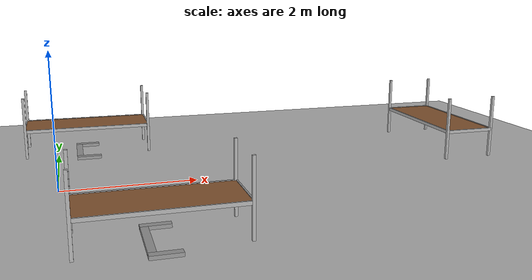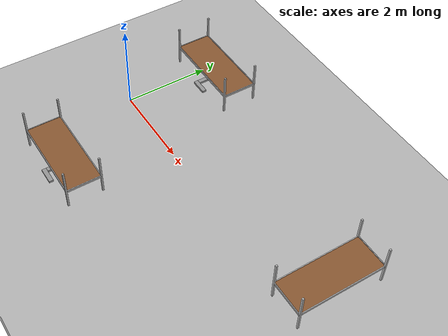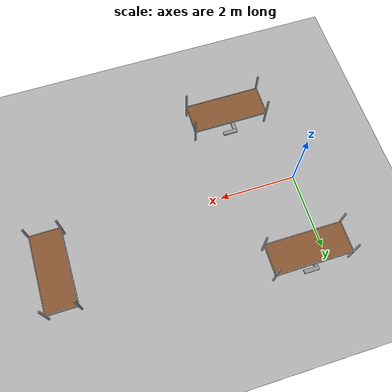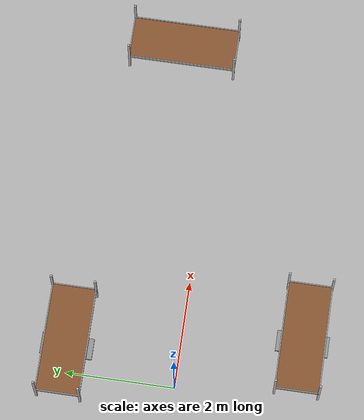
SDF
<sdf version="1.6">
 <world name="default">
  <light name="light0" type="directional">
   <pose>0 -18.818 8 0.75 -0 0</pose>
   <diffuse>0.5 0.5 0.5 1</diffuse>
   <specular>0.1 0.1 0.1 1</specular>
   <direction>0.1 0.1 -0.9</direction>
   <attenuation>
    <range>20</range>
    <constant>0.5</constant>
    <linear>0.01</linear>
    <quadratic>0.001</quadratic>
   </attenuation>
   <cast_shadows>0</cast_shadows>
  </light>
  <light name="light3" type="directional">
   <pose>3.9239 1.64974 4 0 1.2 0</pose>
   <diffuse>0.5 0.5 0.5 1</diffuse>
   <specular>0.1 0.1 0.1 1</specular>
   <direction>0.1 0.1 -0.9</direction>
   <attenuation>
    <range>20</range>
    <constant>0.5</constant>
    <linear>0.01</linear>
    <quadratic>0.001</quadratic>
   </attenuation>
   <cast_shadows>0</cast_shadows>
  </light>
  <light name="light5" type="directional">
   <pose>0.454419 12.4783 5 -0.8 0 0</pose>
   <diffuse>0.5 0.5 0.5 1</diffuse>
   <specular>0.1 0.1 0.1 1</specular>
   <direction>0.1 0.1 -0.9</direction>
   <attenuation>
    <range>20</range>
    <constant>0.5</constant>
    <linear>0.01</linear>
    <quadratic>0.001</quadratic>
   </attenuation>
   <cast_shadows>0</cast_shadows>
  </light>
  <scene>
   <shadows>false</shadows>
   <ambient>0.5 0.5 0.5 1.0</ambient>
   <grid>false</grid>
   <sky><time>22</time><sunrise>20</sunrise><sunset>21</sunset><clouds><humidity>0</humidity></clouds></sky>
  </scene>
  <include><uri>model://ground_plane</uri></include>
  <include><uri>model://moon_surface</uri><pose>0 0 -0.25 0 0 0</pose></include>
  <include><uri>model://rack</uri><name>rack1</name><pose>6.5  0.75 0.0750  0.0 0.0 1.57</pose></include>
  <include><uri>model://rack</uri><name>rack2</name><pose>1.15 -2.2 0.075 0.0 0.0 0.0</pose></include>
  <include>
   <uri>model://single_rack_base</uri>
   <name>rack2Base</name>
   <pose>1.0 -2.2 0.041430 0.0 0.0 1.57</pose>
  </include>
  <include><uri>model://rack</uri><name>rack3</name><pose>0.5 2.05 0.075 0.0 0.0 0.0</pose></include>
  <include>
   <uri>model://single_rack_base</uri>
   <name>rack3Base</name>
   <pose>0.35 2.05 0.041430 0.0 0.0 1.57</pose>
  </include>
  <include><uri>model://isro_arm</uri><name>boxes</name><pose>2.75 0.250 0.0 0.0 0.0 0.0</pose></include>
  <plugin name="gazebo_link_attacher" filename="libgazebo_link_attacher.so"/>
  <plugin name="gazebo_link_ur5_attacher" filename="libgazebo_link_ur5_attacher.so"/>
 </world>
</sdf>

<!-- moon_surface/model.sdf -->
<sdf version="1.6">
  <model name="moon_surface">
    <static>true</static>

    <link name="link">
      <pose>0 0 0.003 0 0 0</pose>

      <visual name="visual1">
        <cast_shadows>false</cast_shadows>
        <geometry>
          <mesh><uri>model://moon_surface/meshes/moon_surface.dae</uri></mesh>
        </geometry>
        <material>
          <shader type='pixel'/>
        </material>
        <pose>0 0 0 0 0 0</pose>
        <transparency>0</transparency>
      </visual>
    </link>
  </model>
</sdf>

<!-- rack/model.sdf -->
<sdf version='1.6'>
  <model name='rack'>
    <link name="surface">
      <inertial>
          <mass>0.1</mass>
          <inertia>
              <ixx>0.00001</ixx>
              <ixy>0.000</ixy>
              <ixz>0.000</ixz>
              <iyy>0.00001</iyy>
              <iyz>0.000</iyz>
              <izz>0.00001</izz>
          </inertia>
      </inertial>
      <visual name='surface_visual'>
        <pose relative_to=''>0 0 0.45 0 0 0</pose>
        <geometry>
          <box>
            <size>2 0.8 0.03</size>
          </box>
        </geometry>
        <material>
          <ambient>0.55 0.35 0.2 1</ambient>
          <diffuse>0.55 0.35 0.2 1</diffuse>
          <specular>0.1 0.1 0.1 1</specular>
          <emissive>0 0 0 1</emissive>
        </material>
        <transparency>0</transparency>
        <cast_shadows>1</cast_shadows>
      </visual>
      <collision name='surface_collision'>
        <pose relative_to=''>0 0 0.45 0 0 0</pose>
        <laser_retro>0</laser_retro>
        <max_contacts>10</max_contacts>
        <geometry>
          <box>
            <size>2 0.82 0.03</size>
          </box>
        </geometry>
        <surface>
          <friction>
            <ode>
              <mu>1000000</mu>
              <mu2>1000000</mu2>
            </ode>
          </friction>
          <bounce>
            <restitution_coefficient>0</restitution_coefficient>
          </bounce>
          <contact>
            <ode>
              <kp>1e13</kp>
              <kd>1</kd>
            </ode>
          </contact>
        </surface>
      </collision>

      <visual name='left_holding_visual'>
        <pose relative_to=''>0 0.4 0.45 0 0 0</pose>
        <geometry>
          <box>
            <size>1.98 0.02 0.05</size>
          </box>
        </geometry>
        <material>
          <ambient>0.3 0.3 0.3 1</ambient>
          <diffuse>0.7 0.7 0.7 1</diffuse>
          <specular>0.01 0.01 0.01 1</specular>
          <emissive>0 0 0 1</emissive>
          <pbr>
            <metal>
              <roughness>0.8</roughness>
              <metalness>0.1</metalness>
            </metal>
          </pbr>
        </material>
        <transparency>0</transparency>
        <cast_shadows>1</cast_shadows>
      </visual>

      <visual name='right_holding_visual'>
        <pose relative_to=''>0 -0.4 0.45 0 0 0</pose>
        <geometry>
          <box>
            <size>1.98 0.02 0.05</size>
          </box>
        </geometry>
        <material>
          <ambient>0.3 0.3 0.3 1</ambient>
          <diffuse>0.7 0.7 0.7 1</diffuse>
          <specular>0.01 0.01 0.01 1</specular>
          <emissive>0 0 0 1</emissive>
          <pbr>
            <metal>
              <roughness>0.8</roughness>
              <metalness>0.1</metalness>
            </metal>
          </pbr>
        </material>
        <transparency>0</transparency>
        <cast_shadows>1</cast_shadows>
      </visual>

      <visual name='front_holding_visual'>
        <pose relative_to=''>1.0 0 0.45 0 0 1.57</pose>
        <geometry>
          <box>
            <size>0.8 0.02 0.05</size>
          </box>
        </geometry>
        <material>
          <ambient>0.3 0.3 0.3 1</ambient>
          <diffuse>0.7 0.7 0.7 1</diffuse>
          <specular>0.01 0.01 0.01 1</specular>
          <emissive>0 0 0 1</emissive>
          <pbr>
            <metal>
              <roughness>0.8</roughness>
              <metalness>0.1</metalness>
            </metal>
          </pbr>
        </material>
        <transparency>0</transparency>
        <cast_shadows>1</cast_shadows>
      </visual>

      <visual name='back_holding_visual'>
        <pose relative_to=''>-1.0 0 0.45 0 0 1.57</pose>
        <geometry>
          <box>
            <size>0.8 0.02 0.05</size>
          </box>
        </geometry>
        <material>
          <ambient>0.3 0.3 0.3 1</ambient>
          <diffuse>0.7 0.7 0.7 1</diffuse>
          <specular>0.01 0.01 0.01 1</specular>
          <emissive>0 0 0 1</emissive>
          <pbr>
            <metal>
              <roughness>0.8</roughness>
              <metalness>0.1</metalness>
            </metal>
          </pbr>
        </material>
        <transparency>0</transparency>
        <cast_shadows>1</cast_shadows>
      </visual>

      <visual name='front_left_leg_visual'>
        <pose relative_to=''>0.99 0.4 0.5 0 0 0</pose>
        <geometry>
          <box>
            <size>0.04 0.04 1.0</size>
          </box>
        </geometry>
        <material>
          <ambient>0.3 0.3 0.3 1</ambient>
          <diffuse>0.7 0.7 0.7 1</diffuse>
          <specular>0.01 0.01 0.01 1</specular>
          <emissive>0 0 0 1</emissive>
          <pbr>
            <metal>
              <roughness>0.8</roughness>
              <metalness>0.1</metalness>
            </metal>
          </pbr>
        </material>
        <cast_shadows>1</cast_shadows>
      </visual>
      <collision name='front_left_leg_collision'>
        <pose relative_to=''>0.99 0.4 0.5 0 0 0</pose>
        <laser_retro>0</laser_retro>
        <max_contacts>10</max_contacts>
        <geometry>
          <box>
            <size>0.04 0.04 1.0</size>
          </box>
        </geometry>
        <surface>
          <friction>
            <ode>
              <mu>0.1</mu>
              <mu2>0.1</mu2>
            </ode>
          </friction>
          <bounce>
            <restitution_coefficient>0</restitution_coefficient>
          </bounce>
          <contact>
            <ode>
              <kp>1e6</kp>
              <kd>1</kd>
            </ode>
          </contact>
        </surface>
      </collision>

      <visual name='front_right_leg_visual'>
        <pose relative_to=''>0.99 -0.4 0.5 0 0 0</pose>
        <geometry>
          <box>
            <size>0.04 0.04 1.0</size>
          </box>
        </geometry>
        <material>
          <ambient>0.3 0.3 0.3 1</ambient>
          <diffuse>0.7 0.7 0.7 1</diffuse>
          <specular>0.01 0.01 0.01 1</specular>
          <emissive>0 0 0 1</emissive>
          <pbr>
            <metal>
              <roughness>0.8</roughness>
              <metalness>0.1</metalness>
            </metal>
          </pbr>
        </material>
        <cast_shadows>1</cast_shadows>
      </visual>
      <collision name='front_right_leg_collision'>
        <pose relative_to=''>0.99 -0.4 0.5 0 0 0</pose>
        <laser_retro>0</laser_retro>
        <max_contacts>10</max_contacts>
        <geometry>
          <box>
            <size>0.04 0.04 1.0</size>
          </box>
        </geometry>
        <surface>
          <friction>
            <ode>
              <mu>0.1</mu>
              <mu2>0.1</mu2>
            </ode>
          </friction>
          <bounce>
            <restitution_coefficient>0</restitution_coefficient>
          </bounce>
          <contact>
            <ode>
              <kp>1e6</kp>
              <kd>1</kd>
            </ode>
          </contact>
        </surface>
      </collision>

      <visual name='back_left_leg_visual'>
        <pose relative_to=''>-0.99 0.4 0.5 0 0 0</pose>
        <geometry>
          <box>
            <size>0.04 0.04 1.0</size>
          </box>
        </geometry>
        <material>
          <ambient>0.3 0.3 0.3 1</ambient>
          <diffuse>0.7 0.7 0.7 1</diffuse>
          <specular>0.01 0.01 0.01 1</specular>
          <emissive>0 0 0 1</emissive>
          <pbr>
            <metal>
              <roughness>0.8</roughness>
              <metalness>0.1</metalness>
            </metal>
          </pbr>
        </material>
        <cast_shadows>1</cast_shadows>
      </visual>
      <collision name='back_left_leg_collision'>
        <pose relative_to=''>-0.99 0.4 0.5 0 0 0</pose>
        <laser_retro>0</laser_retro>
        <max_contacts>10</max_contacts>
        <geometry>
          <box>
            <size>0.04 0.04 1.0</size>
          </box>
        </geometry>
        <surface>
          <friction>
            <ode>
              <mu>0.1</mu>
              <mu2>0.1</mu2>
            </ode>
          </friction>
          <bounce>
            <restitution_coefficient>0</restitution_coefficient>
          </bounce>
          <contact>
            <ode>
              <kp>1e6</kp>
              <kd>1</kd>
            </ode>
          </contact>
        </surface>
      </collision>

      <visual name='back_right_leg_visual'>
        <pose relative_to=''>-0.99 -0.4 0.5 0 0 0</pose>
        <geometry>
          <box>
            <size>0.04 0.04 1.0</size>
          </box>
        </geometry>
        <material>
          <ambient>0.3 0.3 0.3 1</ambient>
          <diffuse>0.7 0.7 0.7 1</diffuse>
          <specular>0.01 0.01 0.01 1</specular>
          <emissive>0 0 0 1</emissive>
          <pbr>
            <metal>
              <roughness>0.8</roughness>
              <metalness>0.1</metalness>
            </metal>
          </pbr>
        </material>
        <cast_shadows>1</cast_shadows>
      </visual>
      <collision name='back_right_leg_collision'>
        <pose relative_to=''>-0.99 -0.4 0.5 0 0 0</pose>
        <laser_retro>0</laser_retro>
        <max_contacts>10</max_contacts>
        <geometry>
          <box>
            <size>0.04 0.04 1.0</size>
          </box>
        </geometry>
        <surface>
          <friction>
            <ode>
              <mu>0.1</mu>
              <mu2>0.1</mu2>
            </ode>
          </friction>
          <bounce>
            <restitution_coefficient>0</restitution_coefficient>
          </bounce>
          <contact>
            <ode>
              <kp>1e6</kp>
              <kd>1</kd>
            </ode>
          </contact>
        </surface>
      </collision>
    </link>

  </model>
</sdf>

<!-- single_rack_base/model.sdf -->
<sdf version='1.7'>
  <model name="my_model">
    <pose>0 0 0.0 0 0 0</pose>
    <static>true</static>
    <link name='link'>
      <inertial>
        <pose>0 0 0 0 -0 0</pose>
        <mass>1.87</mass>
        <inertia>
          <ixx>0.01857</ixx>
          <ixy>0</ixy>
          <ixz>0</ixz>
          <iyy>0.015598</iyy>
          <iyz>0</iyz>
          <izz>0.00305</izz>
        </inertia>
      </inertial>
      <self_collide>0</self_collide>
      <enable_wind>0</enable_wind>
      <kinematic>0</kinematic>
      <pose>0 -0.154224 0 0 -0 0</pose>
      <gravity>1</gravity>
      <visual name='visual_3'>
        <cast_shadows>0</cast_shadows>
        <geometry>
          <box>
            <size>0.1 0.39 0.05</size>
          </box>
        </geometry>
        <material>
          <lighting>1</lighting>
          <script>
            <uri>file://media/materials/scripts/gazebo.material</uri>
            <name>Gazebo/Grey</name>
          </script>
          <shader type='pixel'>
            <normal_map>__default__</normal_map>
          </shader>
          <ambient>0.3 0.3 0.3 1</ambient>
          <diffuse>0.7 0.7 0.7 1</diffuse>
          <specular>0.01 0.01 0.01 1</specular>
          <emissive>0 0 0 1</emissive>
        </material>
        <pose>0.43 0.01 0 0 -0 0</pose>
        <transparency>0</transparency>
      </visual>
      <visual name='visual_4'>
        <cast_shadows>0</cast_shadows>
        <geometry>
          <box>
            <size>0.1 0.39 0.05</size>
          </box>
        </geometry>
        <material>
          <lighting>1</lighting>
          <script>
            <uri>file://media/materials/scripts/gazebo.material</uri>
            <name>Gazebo/Grey</name>
          </script>
          <shader type='pixel'>
            <normal_map>__default__</normal_map>
          </shader>
          <ambient>0.3 0.3 0.3 1</ambient>
          <diffuse>0.7 0.7 0.7 1</diffuse>
          <specular>0.01 0.01 0.01 1</specular>
          <emissive>0 0 0 1</emissive>
        </material>
        <pose>-0.43 0.01 0 0 -0 0</pose>
        <transparency>0</transparency>
      </visual>
      <visual name='visual_1'>
        <cast_shadows>0</cast_shadows>
        <geometry>
          <box>
            <size>0.76 0.1 0.05</size>
          </box>
        </geometry>
        <material>
          <lighting>1</lighting>
          <script>
            <uri>file://media/materials/scripts/gazebo.material</uri>
            <name>Gazebo/Grey</name>
          </script>
          <shader type='pixel'>
            <normal_map>__default__</normal_map>
          </shader>
          <ambient>0.3 0.3 0.3 1</ambient>
          <diffuse>0.7 0.7 0.7 1</diffuse>
          <specular>0.01 0.01 0.01 1</specular>
          <emissive>0 0 0 1</emissive>
        </material>
        <pose>0 0.155 0 0 -0 0</pose>
        <transparency>0</transparency>
      </visual>
      <collision name='collision_7'>
        <laser_retro>0</laser_retro>
        <max_contacts>10</max_contacts>
        <pose>0.43 0.01 0 0 -0 0</pose>
        <geometry>
          <box>
            <size>0.1 0.39 0.05</size>
          </box>
        </geometry>
        <surface>
          <friction>
            <ode>
              <mu>1</mu>
              <mu2>1</mu2>
              <fdir1>0 0 0</fdir1>
              <slip1>0</slip1>
              <slip2>0</slip2>
            </ode>
            <torsional>
              <coefficient>1</coefficient>
              <patch_radius>0</patch_radius>
              <surface_radius>0</surface_radius>
              <use_patch_radius>1</use_patch_radius>
              <ode>
                <slip>0</slip>
              </ode>
            </torsional>
          </friction>
          <bounce>
            <restitution_coefficient>0</restitution_coefficient>
            <threshold>1e+06</threshold>
          </bounce>
          <contact>
            <collide_without_contact>0</collide_without_contact>
            <collide_without_contact_bitmask>1</collide_without_contact_bitmask>
            <collide_bitmask>1</collide_bitmask>
            <ode>
              <soft_cfm>0</soft_cfm>
              <soft_erp>0.2</soft_erp>
              <kp>1e+13</kp>
              <kd>1</kd>
              <max_vel>0.01</max_vel>
              <min_depth>0</min_depth>
            </ode>
            <bullet>
              <split_impulse>1</split_impulse>
              <split_impulse_penetration_threshold>-0.01</split_impulse_penetration_threshold>
              <soft_cfm>0</soft_cfm>
              <soft_erp>0.2</soft_erp>
              <kp>1e+13</kp>
              <kd>1</kd>
            </bullet>
          </contact>
        </surface>
      </collision>
      <collision name='collision_8'>
        <laser_retro>0</laser_retro>
        <max_contacts>10</max_contacts>
        <pose>-0.43 0.01 0 0 -0 0</pose>
        <geometry>
          <box>
            <size>0.1 0.39 0.05</size>
          </box>
        </geometry>
        <surface>
          <friction>
            <ode>
              <mu>1</mu>
              <mu2>1</mu2>
              <fdir1>0 0 0</fdir1>
              <slip1>0</slip1>
              <slip2>0</slip2>
            </ode>
            <torsional>
              <coefficient>1</coefficient>
              <patch_radius>0</patch_radius>
              <surface_radius>0</surface_radius>
              <use_patch_radius>1</use_patch_radius>
              <ode>
                <slip>0</slip>
              </ode>
            </torsional>
          </friction>
          <bounce>
            <restitution_coefficient>0</restitution_coefficient>
            <threshold>1e+06</threshold>
          </bounce>
          <contact>
            <collide_without_contact>0</collide_without_contact>
            <collide_without_contact_bitmask>1</collide_without_contact_bitmask>
            <collide_bitmask>1</collide_bitmask>
            <ode>
              <soft_cfm>0</soft_cfm>
              <soft_erp>0.2</soft_erp>
              <kp>1e+13</kp>
              <kd>1</kd>
              <max_vel>0.01</max_vel>
              <min_depth>0</min_depth>
            </ode>
            <bullet>
              <split_impulse>1</split_impulse>
              <split_impulse_penetration_threshold>-0.01</split_impulse_penetration_threshold>
              <soft_cfm>0</soft_cfm>
              <soft_erp>0.2</soft_erp>
              <kp>1e+13</kp>
              <kd>1</kd>
            </bullet>
          </contact>
        </surface>
      </collision>
      <collision name='collision_6'>
        <laser_retro>0</laser_retro>
        <max_contacts>10</max_contacts>
        <pose>0 0.155 0 0 -0 0</pose>
        <geometry>
          <box>
            <size>0.76 0.1 0.05</size>
          </box>
        </geometry>
        <surface>
          <friction>
            <ode>
              <mu>1</mu>
              <mu2>1</mu2>
              <fdir1>0 0 0</fdir1>
              <slip1>0</slip1>
              <slip2>0</slip2>
            </ode>
            <torsional>
              <coefficient>1</coefficient>
              <patch_radius>0</patch_radius>
              <surface_radius>0</surface_radius>
              <use_patch_radius>1</use_patch_radius>
              <ode>
                <slip>0</slip>
              </ode>
            </torsional>
          </friction>
          <bounce>
            <restitution_coefficient>0</restitution_coefficient>
            <threshold>1e+06</threshold>
          </bounce>
          <contact>
            <collide_without_contact>0</collide_without_contact>
            <collide_without_contact_bitmask>1</collide_without_contact_bitmask>
            <collide_bitmask>1</collide_bitmask>
            <ode>
              <soft_cfm>0</soft_cfm>
              <soft_erp>0.2</soft_erp>
              <kp>1e+13</kp>
              <kd>1</kd>
              <max_vel>0.01</max_vel>
              <min_depth>0</min_depth>
            </ode>
            <bullet>
              <split_impulse>1</split_impulse>
              <split_impulse_penetration_threshold>-0.01</split_impulse_penetration_threshold>
              <soft_cfm>0</soft_cfm>
              <soft_erp>0.2</soft_erp>
              <kp>1e+13</kp>
              <kd>1</kd>
            </bullet>
          </contact>
        </surface>
      </collision>
    </link>
  </model>
</sdf>

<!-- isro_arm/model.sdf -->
<sdf version='1.7'>
  <model name="joel_gauresh_urdf">
  <robot name="joel_gauresh_urdf">
  <link
    name="base_link">
    <inertial>
      <origin
        xyz="-0.00030267 -0.00045453 0.030233"
        rpy="0 0 0" />
      <mass
        value="0.55521" />
      <inertia
        ixx="0.0009981"
        ixy="1.3692E-05"
        ixz="2.7862E-07"
        iyy="0.0010057"
        iyz="6.0539E-07"
        izz="0.001945" />
    </inertial>
    <visual>
      <origin
        xyz="0 0 0"
        rpy="0 0 0" />
      <geometry>
        <mesh
          filename="model://isro_arm/meshes/base_link.STL" />
      </geometry>
      <material
        name="">
        <color
          rgba="0.50196 0.50196 0.50196 1" />
      </material>
    </visual>
    <collision>
      <origin
        xyz="0 0 0"
        rpy="0 0 0" />
      <geometry>
        <mesh
          filename="model://isro_arm/meshes/base_link.STL" />
      </geometry>
    </collision>
  </link>
  <link
    name="shoulder_link1">
    <inertial>
      <origin
        xyz="-0.00093144 0.02883 0.00062509"
        rpy="0 0 0" />
      <mass
        value="0.36846" />
      <inertia
        ixx="0.00058065"
        ixy="9.1504E-08"
        ixz="-1.601E-05"
        iyy="0.0010185"
        iyz="1.6871E-07"
        izz="0.00055982" />
    </inertial>
    <visual>
      <origin
        xyz="0 0 0"
        rpy="0 0 0" />
      <geometry>
        <mesh
          filename="model://isro_arm/meshes/shoulder_link1.STL" />
      </geometry>
      <material
        name="">
        <color
          rgba="0.50196 0.50196 0.50196 1" />
      </material>
    </visual>
    <collision>
      <origin
        xyz="0 0 0"
        rpy="0 0 0" />
      <geometry>
        <mesh
          filename="model://isro_arm/meshes/shoulder_link1.STL" />
      </geometry>
    </collision>
  </link>
  <joint
    name="shoulder_joint1"
    type="revolute">
    <origin
      xyz="0 0 0.06525"
      rpy="1.5708 0 1.5708" />
    <parent
      link="base_link" />
    <child
      link="shoulder_link1" />
    <axis
      xyz="0 0 0" />
    <limit
      lower="0"
      upper="6.28"
      effort="0"
      velocity="0" />
  </joint>
  <link
    name="shoulder_link2">
    <inertial>
      <origin
        xyz="-0.01738 2.3564E-14 0.093249"
        rpy="0 0 0" />
      <mass
        value="0.45423" />
      <inertia
        ixx="0.0018458"
        ixy="7.6625E-13"
        ixz="-1.5935E-06"
        iyy="0.0017096"
        iyz="1.2654E-13"
        izz="0.00016523" />
    </inertial>
    <visual>
      <origin
        xyz="0 0 0"
        rpy="0 0 0" />
      <geometry>
        <mesh
          filename="model://isro_arm/meshes/shoulder_link2.STL" />
      </geometry>
      <material
        name="">
        <color
          rgba="0.50196 0.50196 0.50196 1" />
      </material>
    </visual>
    <collision>
      <origin
        xyz="0 0 0"
        rpy="0 0 0" />
      <geometry>
        <mesh
          filename="model://isro_arm/meshes/shoulder_link2.STL" />
      </geometry>
    </collision>
  </link>
  <joint
    name="shoulder_joint2"
    type="revolute">
    <origin
      xyz="0.011779 0.07 -0.0063887"
      rpy="3.1402 0 0" />
    <parent
      link="shoulder_link1" />
    <child
      link="shoulder_link2" />
    <axis
      xyz="0 0 0" />
    <limit
      lower="0"
      upper="3.14"
      effort="300"
      velocity="3" />
  </joint>
  <link
    name="shoulder_link3">
    <inertial>
      <origin
        xyz="0.00011307 -0.00070715 -0.057802"
        rpy="0 0 0" />
      <mass
        value="0.23343" />
      <inertia
        ixx="0.00057111"
        ixy="-1.8665E-08"
        ixz="2.5014E-08"
        iyy="0.00053376"
        iyz="-4.6592E-06"
        izz="7.1501E-05" />
    </inertial>
    <visual>
      <origin
        xyz="0 0 0"
        rpy="0 0 0" />
      <geometry>
        <mesh
          filename="model://isro_arm/meshes/shoulder_link3.STL" />
      </geometry>
      <material
        name="">
        <color
          rgba="0.50196 0.50196 0.50196 1" />
      </material>
    </visual>
    <collision>
      <origin
        xyz="0 0 0"
        rpy="0 0 0" />
      <geometry>
        <mesh
          filename="model://isro_arm/meshes/shoulder_link3.STL" />
      </geometry>
    </collision>
  </link>
  <joint
    name="shoulder_joint3"
    type="revolute">
    <origin
      xyz="-0.0184 0 0.185"
      rpy="1.5708 0 3.1402" />
    <parent
      link="shoulder_link2" />
    <child
      link="shoulder_link3" />
    <axis
      xyz="0 0 0" />
    <limit
      lower="-1.396"
      upper="3.84"
      effort="300"
      velocity="3" />
  </joint>
  <link
    name="shoulder_link4">
    <inertial>
      <origin
        xyz="-0.016476 0.0041063 0.039356"
        rpy="0 0 0" />
      <mass
        value="0.23704" />
      <inertia
        ixx="0.000232"
        ixy="1.2542E-08"
        ixz="2.5141E-07"
        iyy="0.0001751"
        iyz="-4.9175E-06"
        izz="7.8002E-05" />
    </inertial>
    <visual>
      <origin
        xyz="0 0 0"
        rpy="0 0 0" />
      <geometry>
        <mesh
          filename="model://isro_arm/meshes/shoulder_link4.STL" />
      </geometry>
      <material
        name="">
        <color
          rgba="0.50196 0.50196 0.50196 1" />
      </material>
    </visual>
    <collision>
      <origin
        xyz="0 0 0"
        rpy="0 0 0" />
      <geometry>
        <mesh
          filename="model://isro_arm/meshes/shoulder_link4.STL" />
      </geometry>
    </collision>
  </link>
  <joint
    name="shoulder_joint4"
    type="revolute">
    <origin
      xyz="-0.0184 0 -0.1175"
      rpy="-1.5708 0 3.1402" />
    <parent
      link="shoulder_link3" />
    <child
      link="shoulder_link4" />
    <axis
      xyz="0 0 0" />
    <limit
      lower="-0.785"
      upper="3.229"
      effort="300"
      velocity="3" />
  </joint>
  <link
    name="wrist_link">
    <inertial>
      <origin
        xyz="4.4966E-11 -0.01662 -0.0094006"
        rpy="0 0 0" />
      <mass
        value="0.044881" />
      <inertia
        ixx="3.5363E-05"
        ixy="-6.2306E-15"
        ixz="-6.2979E-13"
        iyy="3.8917E-05"
        iyz="1.9805E-06"
        izz="6.835E-06" />
    </inertial>
    <visual>
      <origin
        xyz="0 0 0"
        rpy="0 0 0" />
      <geometry>
        <mesh
          filename="model://isro_arm/meshes/wrist_link.STL" />
      </geometry>
      <material
        name="">
        <color
          rgba="0.50196 0.50196 0.50196 1" />
      </material>
    </visual>
    <collision>
      <origin
        xyz="0 0 0"
        rpy="0 0 0" />
      <geometry>
        <mesh
          filename="model://isro_arm/meshes/wrist_link.STL" />
      </geometry>
    </collision>
  </link>
  <joint
    name="wrist_joint"
    type="revolute">
    <origin
      xyz="-0.017896 0.013363 0.10997"
      rpy="3.1402 0 0" />
    <parent
      link="shoulder_link4" />
    <child
      link="wrist_link" />
    <axis
      xyz="0 0 0" />
    <limit
      lower="-3.1402"
      upper="3.1402"
      effort="300"
      velocity="3" />
  </joint>
  <link
    name="EndEffector_link">
    <inertial>
      <origin
        xyz="-0.0065515 0.008032 0.0073471"
        rpy="0 0 0" />
      <mass
        value="0.062706" />
      <inertia
        ixx="4.2342E-05"
        ixy="2.0214E-06"
        ixz="-7.4487E-06"
        iyy="6.6651E-05"
        iyz="3.1444E-06"
        izz="2.7585E-05" />
    </inertial>
    <visual>
      <origin
        xyz="0 0 0"
        rpy="0 0 0" />
      <geometry>
        <mesh
          filename="model://isro_arm/meshes/EndEffector_link.STL" />
      </geometry>
      <material
        name="">
        <color
          rgba="0.50196 0.50196 0.50196 1" />
      </material>
    </visual>
    <collision>
      <origin
        xyz="0 0 0"
        rpy="0 0 0" />
      <geometry>
        <mesh
          filename="model://isro_arm/meshes/EndEffector_link.STL" />
      </geometry>
    </collision>
  </link>
  <joint
    name="EndEffector_joint"
    type="revolute">
    <origin
      xyz="0 -0.021 -0.04725"
      rpy="0 0.79382 0" />
    <parent
      link="wrist_link" />
    <child
      link="EndEffector_link" />
    <axis
      xyz="0 0 0" />
    <limit
      lower="0"
      upper="0.785"
      effort="300"
      velocity="3" />
  </joint>
  </robot>
</model>
</sdf>
